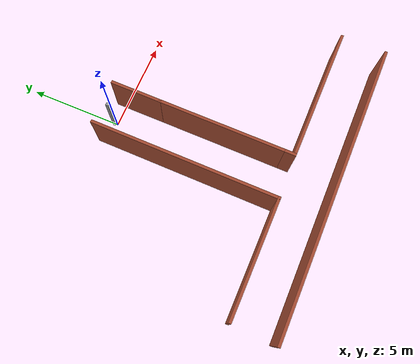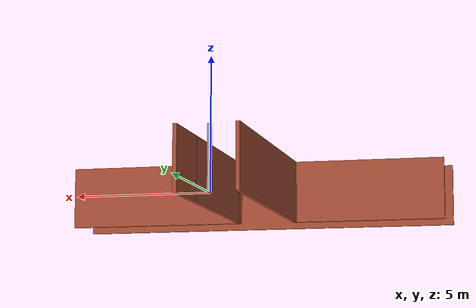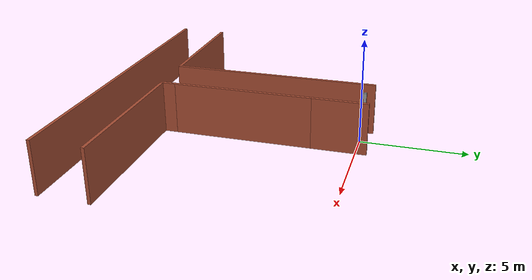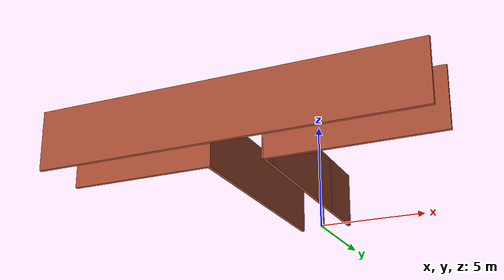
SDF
<?xml version='1.0'?>
<sdf version='1.7'>
  <model name='T-intersection'>
    <pose>0.500373 -5.64614 0 0 -0 0</pose>
    <link name='Wall_10'>
      <collision name='Wall_10_Collision'>
        <geometry>
          <box>
            <size>6.75 0.15 2.5</size>
          </box>
        </geometry>
        <pose>0 0 1.25 0 -0 0</pose>
      </collision>
      <visual name='Wall_10_Visual'>
        <pose>0 0 1.25 0 -0 0</pose>
        <geometry>
          <box>
            <size>6.75 0.15 2.5</size>
          </box>
        </geometry>
        <material>
          <script>
            <uri>file://media/materials/scripts/gazebo.material</uri>
            <name>Gazebo/Bricks</name>
          </script>
          <ambient>1 1 1 1</ambient>
        </material>
        <meta>
          <layer>0</layer>
        </meta>
      </visual>
      <pose>0.709599 0.193928 0 0 -0 -1.5708</pose>
    </link>
    <link name='Wall_11'>
      <collision name='Wall_11_Collision'>
        <geometry>
          <box>
            <size>0.75 0.15 2.5</size>
          </box>
        </geometry>
        <pose>0 0 1.25 0 -0 0</pose>
      </collision>
      <visual name='Wall_11_Visual'>
        <pose>0 0 1.25 0 -0 0</pose>
        <geometry>
          <box>
            <size>0.75 0.15 2.5</size>
          </box>
        </geometry>
        <material>
          <script>
            <uri>file://media/materials/scripts/gazebo.material</uri>
            <name>Gazebo/Bricks</name>
          </script>
          <ambient>1 1 1 1</ambient>
        </material>
        <meta>
          <layer>0</layer>
        </meta>
      </visual>
      <pose>0.709599 -3.40607 0 0 -0 -1.5708</pose>
    </link>
    <link name='Wall_13'>
      <collision name='Wall_13_Collision'>
        <geometry>
          <box>
            <size>10 0.15 2.5</size>
          </box>
        </geometry>
        <pose>0 0 1.25 0 -0 0</pose>
      </collision>
      <visual name='Wall_13_Visual'>
        <pose>0 0 1.25 0 -0 0</pose>
        <geometry>
          <box>
            <size>10 0.15 2.5</size>
          </box>
        </geometry>
        <material>
          <script>
            <uri>file://media/materials/scripts/gazebo.material</uri>
            <name>Gazebo/Bricks</name>
          </script>
          <ambient>1 1 1 1</ambient>
        </material>
        <meta>
          <layer>0</layer>
        </meta>
      </visual>
      <pose>-1.62022 1.14985 0 0 -0 1.5708</pose>
    </link>
    <link name='Wall_17'>
      <collision name='Wall_17_Collision'>
        <geometry>
          <box>
            <size>6.25 0.15 2.5</size>
          </box>
        </geometry>
        <pose>0 0 1.25 0 -0 0</pose>
      </collision>
      <visual name='Wall_17_Visual'>
        <pose>0 0 1.25 0 -0 0</pose>
        <geometry>
          <box>
            <size>6.25 0.15 2.5</size>
          </box>
        </geometry>
        <material>
          <script>
            <uri>file://media/materials/scripts/gazebo.material</uri>
            <name>Gazebo/Bricks</name>
          </script>
          <ambient>1 1 1 1</ambient>
        </material>
        <meta>
          <layer>0</layer>
        </meta>
      </visual>
      <pose>-4.67022 -3.77515 0 0 -0 3.14159</pose>
    </link>
    <link name='Wall_19'>
      <collision name='Wall_19_Collision'>
        <geometry>
          <box>
            <size>7.25 0.15 2.5</size>
          </box>
        </geometry>
        <pose>0 0 1.25 0 -0 0</pose>
      </collision>
      <visual name='Wall_19_Visual'>
        <pose>0 0 1.25 0 -0 0</pose>
        <geometry>
          <box>
            <size>7.25 0.15 2.5</size>
          </box>
        </geometry>
        <material>
          <script>
            <uri>file://media/materials/scripts/gazebo.material</uri>
            <name>Gazebo/Bricks</name>
          </script>
          <ambient>1 1 1 1</ambient>
        </material>
        <meta>
          <layer>0</layer>
        </meta>
      </visual>
      <pose>4.2596 -3.70607 0 0 -0 0</pose>
    </link>
    <link name='Wall_21'>
      <collision name='Wall_21_Collision'>
        <geometry>
          <box>
            <size>15.75 0.15 2.5</size>
          </box>
        </geometry>
        <pose>0 0 1.25 0 -0 0</pose>
      </collision>
      <visual name='Wall_21_Visual'>
        <pose>0 0 1.25 0 -0 0</pose>
        <geometry>
          <box>
            <size>15.75 0.15 2.5</size>
          </box>
        </geometry>
        <material>
          <script>
            <uri>file://media/materials/scripts/gazebo.material</uri>
            <name>Gazebo/Bricks</name>
          </script>
          <ambient>1 1 1 1</ambient>
        </material>
        <meta>
          <layer>0</layer>
        </meta>
      </visual>
      <pose>-0.009599 -6.09393 0 0 -0 0</pose>
    </link>
    <link name='Wall_6'>
      <collision name='Wall_6_Collision'>
        <geometry>
          <box>
            <size>0.15 0.15 2.5</size>
          </box>
        </geometry>
        <pose>0 0 1.25 0 -0 0</pose>
      </collision>
      <visual name='Wall_6_Visual'>
        <pose>0 0 1.25 0 -0 0</pose>
        <geometry>
          <box>
            <size>0.15 0.15 2.5</size>
          </box>
        </geometry>
        <material>
          <script>
            <uri>file://media/materials/scripts/gazebo.material</uri>
            <name>Gazebo/Grey</name>
          </script>
          <ambient>1 1 1 1</ambient>
        </material>
        <meta>
          <layer>0</layer>
        </meta>
      </visual>
      <pose>-0.498358 5.80461 0 0 -0 0</pose>
    </link>
    <link name='Wall_7'>
      <collision name='Wall_7_Collision'>
        <geometry>
          <box>
            <size>0.15 0.15 2.5</size>
          </box>
        </geometry>
        <pose>0 0 1.25 0 -0 0</pose>
      </collision>
      <visual name='Wall_7_Visual'>
        <pose>0 0 1.25 0 -0 0</pose>
        <geometry>
          <box>
            <size>0.15 0.15 2.5</size>
          </box>
        </geometry>
        <material>
          <script>
            <uri>file://media/materials/scripts/gazebo.material</uri>
            <name>Gazebo/Grey</name>
          </script>
          <ambient>1 1 1 1</ambient>
        </material>
        <meta>
          <layer>0</layer>
        </meta>
      </visual>
      <pose>-0.498358 5.80461 0 0 -0 0</pose>
    </link>
    <link name='Wall_9'>
      <collision name='Wall_9_Collision'>
        <geometry>
          <box>
            <size>2.75 0.15 2.5</size>
          </box>
        </geometry>
        <pose>0 0 1.25 0 -0 0</pose>
      </collision>
      <visual name='Wall_9_Visual'>
        <pose>0 0 1.25 0 -0 0</pose>
        <geometry>
          <box>
            <size>2.75 0.15 2.5</size>
          </box>
        </geometry>
        <material>
          <script>
            <uri>file://media/materials/scripts/gazebo.material</uri>
            <name>Gazebo/Bricks</name>
          </script>
          <ambient>1 1 1 1</ambient>
        </material>
        <meta>
          <layer>0</layer>
        </meta>
      </visual>
      <pose>0.709599 4.79393 0 0 -0 -1.5708</pose>
    </link>
    <static>1</static>
  </model>
</sdf>
